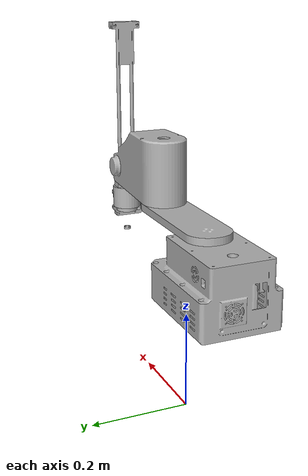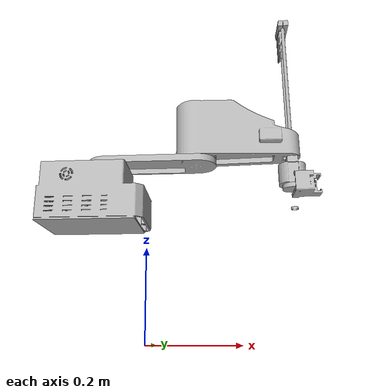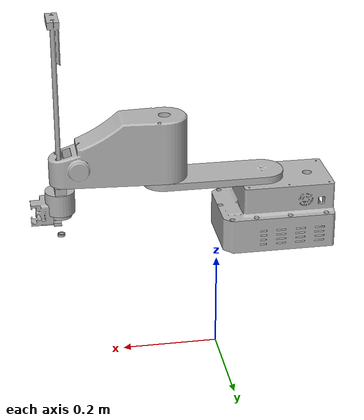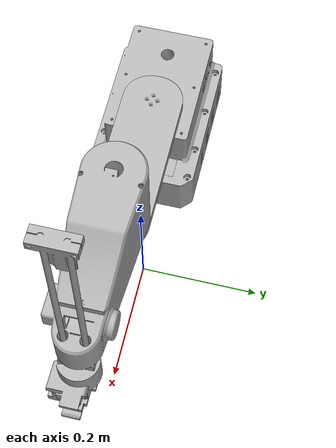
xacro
<?xml version="1.0" ?>
<robot name="scara_arm_vacuum_gripper" xmlns:xacro="http://www.ros.org/wiki/xacro">

<xacro:include filename="$(find scara_arm_description)/urdf/scara_arm.xacro" />
<xacro:include filename="$(find vacuum_gripper_description)/urdf/vacuum_gripper.xacro" />

<joint name="gripper_attach" type="fixed">
  <origin xyz="0 0 0" rpy="0 0 0"/>
  <parent link="link_04_1"/>
  <child link="gripper_base_link"/>
</joint>

</robot>

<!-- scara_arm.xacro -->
<robot name="scara_arm" xmlns:xacro="http://www.ros.org/wiki/xacro">

<xacro:include filename="$(find scara_arm_description)/urdf/materials.xacro" />
<xacro:include filename="$(find scara_arm_description)/urdf/scara_arm.trans" />
<xacro:include filename="$(find scara_arm_description)/urdf/scara_arm.gazebo" />
<link name="world" />
    <joint name="world_joint" type="fixed">
        <origin rpy="0 0 0" xyz="0 0 0.25" />
        <parent link="world" />
        <child link="base_link" />
    </joint>

<link name="base_link">
  <inertial>
    <origin xyz="-0.11835854812758473 -0.000276888564792295 0.07546314461319549" rpy="0 0 0"/>
    <mass value="9.76941358714018"/>
    <inertia ixx="0.040462" iyy="0.058748" izz="0.065063" ixy="0.000229" iyz="3e-06" ixz="0.003341"/>
  </inertial>
  <visual>
    <origin xyz="0 0 0" rpy="0 0 0"/>
    <geometry>
      <mesh filename="package://scara_arm_description/meshes/base_link.stl" scale="0.001 0.001 0.001"/>
    </geometry>
    <material name="silver"/>
  </visual>
  <collision>
    <origin xyz="0 0 0" rpy="0 0 0"/>
    <geometry>
      <mesh filename="package://scara_arm_description/meshes/base_link.stl" scale="0.001 0.001 0.001"/>
    </geometry>
  </collision>
</link>

<link name="link_01_1">
  <inertial>
    <origin xyz="0.08670878750712241 1.200325802990558e-08 0.006656155794027313" rpy="0 0 0"/>
    <mass value="1.9187641006386469"/>
    <inertia ixx="0.001419" iyy="0.016505" izz="0.017605" ixy="0.0" iyz="0.0" ixz="-0.000439"/>
  </inertial>
  <visual>
    <origin xyz="0.089 -0.0 -0.134" rpy="0 0 0"/>
    <geometry>
      <mesh filename="package://scara_arm_description/meshes/link_01_1.stl" scale="0.001 0.001 0.001"/>
    </geometry>
    <material name="silver"/>
  </visual>
  <collision>
    <origin xyz="0.089 -0.0 -0.134" rpy="0 0 0"/>
    <geometry>
      <mesh filename="package://scara_arm_description/meshes/link_01_1.stl" scale="0.001 0.001 0.001"/>
    </geometry>
  </collision>
</link>

<link name="link_02_1">
  <inertial>
    <origin xyz="0.08442650829809627 -0.00019960790751640374 0.04670690112194936" rpy="0 0 0"/>
    <mass value="4.429642089527778"/>
    <inertia ixx="0.010022" iyy="0.037429" izz="0.034386" ixy="0.000108" iyz="-1.5e-05" ixz="0.003844"/>
  </inertial>
  <visual>
    <origin xyz="-0.109 -0.0 -0.150161" rpy="0 0 0"/>
    <geometry>
      <mesh filename="package://scara_arm_description/meshes/link_02_1.stl" scale="0.001 0.001 0.001"/>
    </geometry>
    <material name="silver"/>
  </visual>
  <collision>
    <origin xyz="-0.109 -0.0 -0.150161" rpy="0 0 0"/>
    <geometry>
      <mesh filename="package://scara_arm_description/meshes/link_02_1.stl" scale="0.001 0.001 0.001"/>
    </geometry>
  </collision>
</link>

<link name="link_03_1">
  <inertial>
    <origin xyz="7.948171955463046e-05 0.015947235193624242 0.007476972757145983" rpy="0 0 0"/>
    <mass value="1.573240852398478"/>
    <inertia ixx="0.031125" iyy="0.031053" izz="0.000561" ixy="-1e-06" iyz="0.000143" ixz="0.000175"/>
  </inertial>
  <visual>
    <origin xyz="-0.321 0.014923 -0.190844" rpy="0 0 0"/>
    <geometry>
      <mesh filename="package://scara_arm_description/meshes/link_03_1.stl" scale="0.001 0.001 0.001"/>
    </geometry>
    <material name="silver"/>
  </visual>
  <collision>
    <origin xyz="-0.321 0.014923 -0.190844" rpy="0 0 0"/>
    <geometry>
      <mesh filename="package://scara_arm_description/meshes/link_03_1.stl" scale="0.001 0.001 0.001"/>
    </geometry>
  </collision>
</link>

<link name="link_04_1">
  <inertial>
    <origin xyz="-6.87288058324742e-05 -3.7241785767553145e-11 -0.004999674402307544" rpy="0 0 0"/>
    <mass value="0.1300483969226679"/>
    <inertia ixx="1.8e-05" iyy="1.8e-05" izz="3.4e-05" ixy="0.0" iyz="0.0" ixz="0.0"/>
  </inertial>
  <visual>
    <origin xyz="-0.3217 0.0 -0.087161" rpy="0 0 0"/>
    <geometry>
      <mesh filename="package://scara_arm_description/meshes/link_04_1.stl" scale="0.001 0.001 0.001"/>
    </geometry>
    <material name="silver"/>
  </visual>
  <collision>
    <origin xyz="-0.3217 0.0 -0.087161" rpy="0 0 0"/>
    <geometry>
      <mesh filename="package://scara_arm_description/meshes/link_04_1.stl" scale="0.001 0.001 0.001"/>
    </geometry>
  </collision>
</link>

<joint name="link_01_joint" type="revolute">
  <origin xyz="-0.089 0.0 0.134" rpy="0 0 0"/>
  <parent link="base_link"/>
  <child link="link_01_1"/>
  <axis xyz="0.0 -0.0 1.0"/>
  <limit upper="1.71042" lower="-1.43117" effort="100" velocity="100"/>
</joint>

<joint name="link_02_joint" type="revolute">
  <origin xyz="0.198 0.0 0.016161" rpy="0 0 0"/>
  <parent link="link_01_1"/>
  <child link="link_02_1"/>
  <axis xyz="0.0 0.0 1.0"/>
  <limit upper="1.43117" lower="-1.71042" effort="100" velocity="100"/>
</joint>

<joint name="link_03_joint" type="prismatic">
  <origin xyz="0.212 -0.014923 0.040683" rpy="0 0 0"/>
  <parent link="link_02_1"/>
  <child link="link_03_1"/>
  <axis xyz="0.0 0.0 1.0"/>
  <limit upper="0.0" lower="-0.23" effort="100" velocity="100"/>
</joint>

<joint name="link_04_joint" type="revolute">
  <origin xyz="0.0007 0.014923 -0.103683" rpy="0 0 0"/>
  <parent link="link_03_1"/>
  <child link="link_04_1"/>
  <axis xyz="0.0 0.0 -1.0"/>
  <limit upper="1.570796" lower="-1.570796" effort="100" velocity="100"/>
</joint>

</robot>

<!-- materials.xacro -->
<robot name="scara_arm" xmlns:xacro="http://www.ros.org/wiki/xacro" >

<material name="silver">
  <color rgba="0.700 0.700 0.700 1.000"/>
</material>

</robot>

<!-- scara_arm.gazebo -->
<robot name="scara_arm" xmlns:xacro="http://www.ros.org/wiki/xacro" >

<xacro:property name="body_color" value="Gazebo/Silver" />

<gazebo>
  <plugin name="control" filename="libgazebo_ros_control.so"/>
</gazebo>
<gazebo reference="base_link">
  <material>${body_color}</material>
  <mu1>0.2</mu1>
  <mu2>0.2</mu2>
  <selfCollide>true</selfCollide>
  <gravity>true</gravity>
</gazebo>

<gazebo reference="link_01_1">
  <material>${body_color}</material>
  <mu1>0.2</mu1>
  <mu2>0.2</mu2>
  <selfCollide>true</selfCollide>
</gazebo>

<gazebo reference="link_02_1">
  <material>${body_color}</material>
  <mu1>0.2</mu1>
  <mu2>0.2</mu2>
  <selfCollide>true</selfCollide>
</gazebo>

<gazebo reference="link_03_1">
  <material>${body_color}</material>
  <mu1>0.2</mu1>
  <mu2>0.2</mu2>
  <selfCollide>true</selfCollide>
</gazebo>

<gazebo reference="link_04_1">
  <material>${body_color}</material>
  <mu1>0.2</mu1>
  <mu2>0.2</mu2>
  <selfCollide>true</selfCollide>
</gazebo>

</robot>

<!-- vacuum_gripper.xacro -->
<robot name="vacuum_gripper" xmlns:xacro="http://www.ros.org/wiki/xacro">

<xacro:include filename="$(find vacuum_gripper_description)/urdf/vacuum_gripper.trans" />
<xacro:include filename="$(find vacuum_gripper_description)/urdf/vacuum_gripper.gazebo" />
<link name="gripper_base_link">
  <inertial>
    <origin xyz="0.012152318878142441 0.00989984571459361 -0.05720243618145755" rpy="0 0 0"/>
    <mass value="0.8034775156193473"/>
    <inertia ixx="0.000793" iyy="0.000806" izz="0.000631" ixy="9.2e-05" iyz="9e-05" ixz="-6.1e-05"/>
  </inertial>
  <visual>
    <origin xyz="0 0 0" rpy="0 0 0"/>
    <geometry>
      <mesh filename="package://vacuum_gripper_description/meshes/gripper_base_link.stl" scale="0.001 0.001 0.001"/>
    </geometry>
    <material name="silver"/>
  </visual>
  <collision>
    <origin xyz="0 0 0" rpy="0 0 0"/>
    <geometry>
      <mesh filename="package://vacuum_gripper_description/meshes/gripper_base_link.stl" scale="0.001 0.001 0.001"/>
    </geometry>
  </collision>
</link>

<link name="gripper_link_1">
  <inertial>
    <origin xyz="2.943394468511826e-07 2.2149824879902726e-07 -0.0024999999999999675" rpy="0 0 0"/>
    <mass value="0.002457048975733048"/>
    <inertia ixx="0.0" iyy="0.0" izz="0.0" ixy="-0.0" iyz="0.0" ixz="0.0"/>
  </inertial>
  <visual>
    <origin xyz="-0.000371 -2.9e-05 0.0505" rpy="0 0 0"/>
    <geometry>
      <mesh filename="package://vacuum_gripper_description/meshes/gripper_link_1.stl" scale="0.001 0.001 0.001"/>
    </geometry>
    <material name="silver"/>
  </visual>
  <collision>
    <origin xyz="-0.000371 -2.9e-05 0.0505" rpy="0 0 0"/>
    <geometry>
      <mesh filename="package://vacuum_gripper_description/meshes/gripper_link_1.stl" scale="0.001 0.001 0.001"/>
    </geometry>
  </collision>
</link>

<joint name="gripper_joint" type="prismatic">
  <origin xyz="0.000371 2.9e-05 -0.0505" rpy="0 0 0"/>
  <parent link="gripper_base_link"/>
  <child link="gripper_link_1"/>
  <axis xyz="-0.0 -0.0 -1.0"/>
  <limit upper="0.02" lower="0.0" effort="100" velocity="100"/>
</joint>

</robot>

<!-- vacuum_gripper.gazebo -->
<robot name="vacuum_gripper" xmlns:xacro="http://www.ros.org/wiki/xacro" >

<xacro:property name="body_color" value="Gazebo/Silver" />

<gazebo>
  <plugin name="control" filename="libgazebo_ros_control.so"/>
</gazebo>
<gazebo reference="gripper_base_link">
  <material>${body_color}</material>
  <mu1>0.2</mu1>
  <mu2>0.2</mu2>
  <selfCollide>true</selfCollide>
  <gravity>true</gravity>
</gazebo>

<gazebo reference="gripper_link_1">
  <material>${body_color}</material>
  <mu1>0.2</mu1>
  <mu2>0.2</mu2>
  <selfCollide>true</selfCollide>
</gazebo>

</robot>
